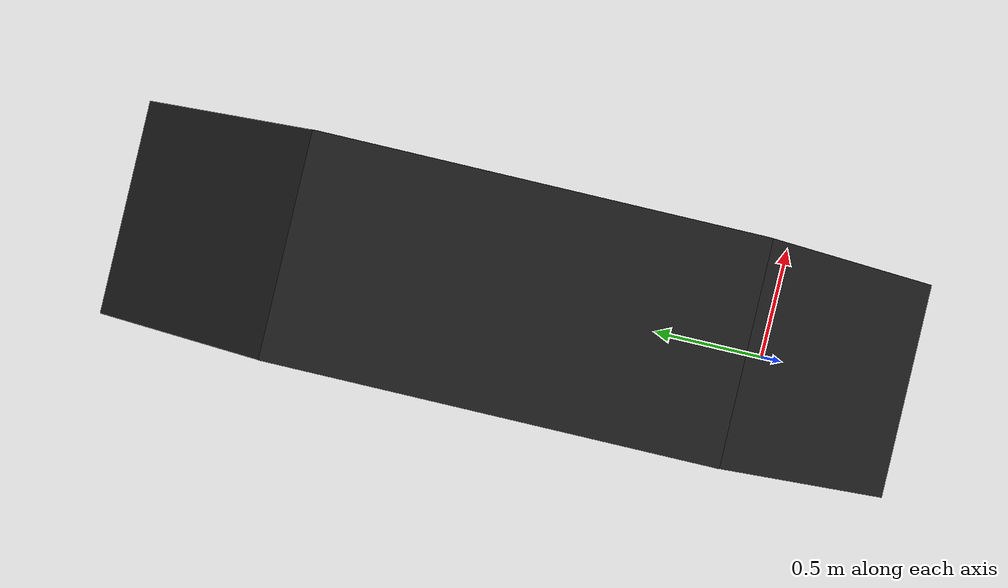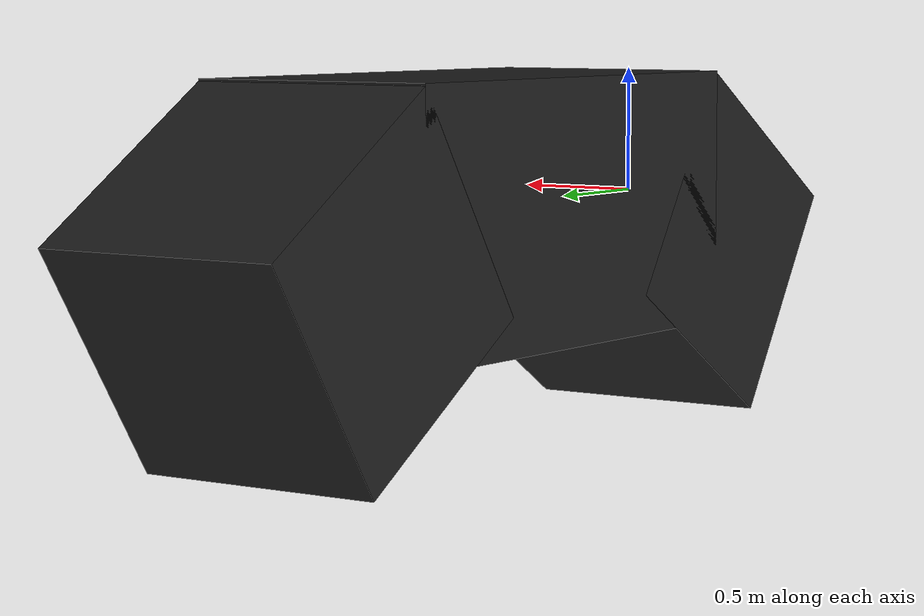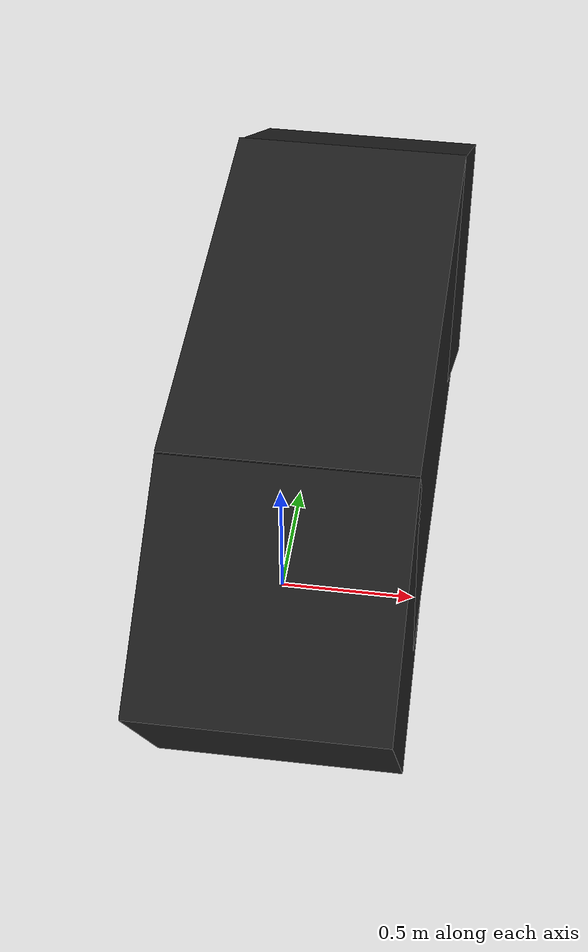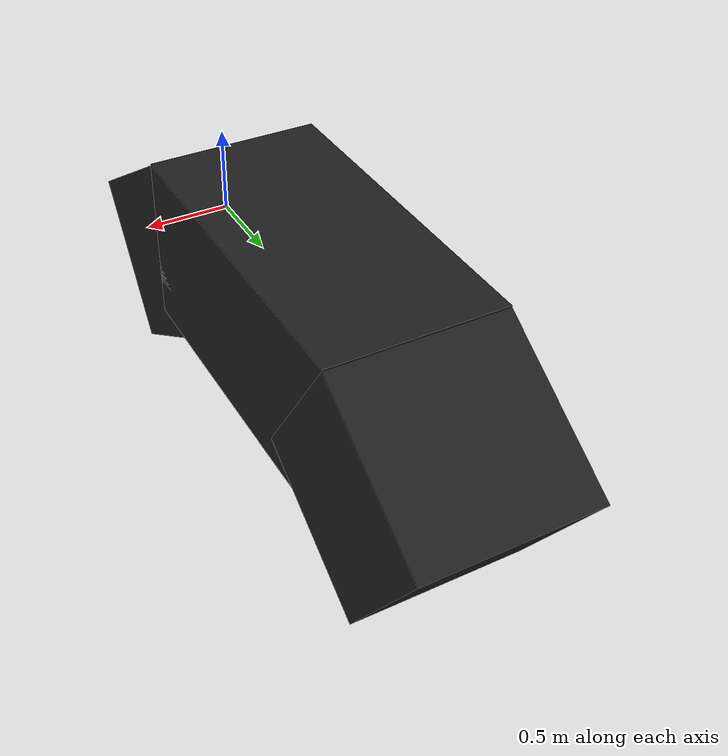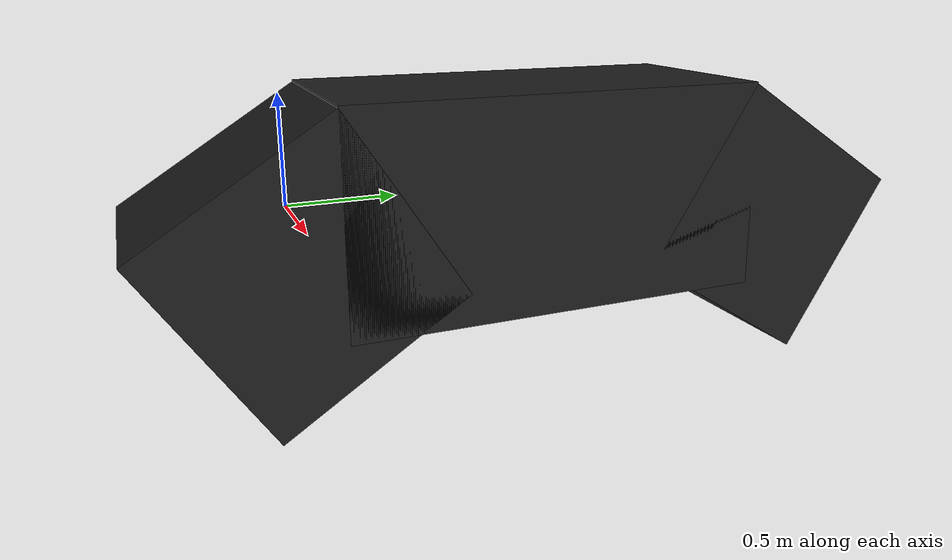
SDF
<?xml version="1.0"?>
<sdf version="1.4">
  <model name="ramp_60">
    <static>true</static>
    <pose>0 0 0 0 0 0</pose>
    <link name="link">
      <collision name="up_collision">
        <pose>0 0 -0.2 -1.0 0 0</pose>
        <geometry>
          <box>
            <size>1 1 1</size>
          </box>
        </geometry>
      </collision>

        <visual name='up_visual'>
         <pose>0 0 -0.2 -1.0 0 0 </pose>
          <geometry>
            <box>
              <size>1 1 1</size>
            </box>
          </geometry>
          <material>
            <script>
              <uri>file://media/materials/scripts/gazebo.material</uri>
              <name>Gazebo/FlatBlack</name>
            </script>
          </material>
        </visual>

      <collision name="down_collision">
        <pose>0 2.3 -0.2 1.0 0 0</pose>
        <geometry>
          <box>
            <size>1 1 1</size>
          </box>
        </geometry>
      </collision>

        <visual name='down_visual'>
         <pose>0 2.3 -0.2 1.0 0 0 </pose>
          <geometry>
            <box>
              <size>1 1 1</size>
            </box>
          </geometry>
        <material>
            <script>
              <uri>file://media/materials/scripts/gazebo.material</uri>
              <name>Gazebo/FlatBlack</name>
            </script>
          </material>
        </visual>

      <collision name="mid_collision">
        <pose>0 1.15 0 0 0 0</pose>
        <geometry>
          <box>
            <size>1 2 1</size>
          </box>
        </geometry>
      </collision>

        <visual name='mid_visual'>
         <pose>0 1.15 0 0 0 0 </pose>
          <geometry>
            <box>
              <size>1 2 1</size>
            </box>
          </geometry>
          <material>
            <script>
              <uri>file://media/materials/scripts/gazebo.material</uri>
              <name>Gazebo/FlatBlack</name>
            </script>
          </material>
        </visual>
    </link>
  </model>
</sdf>
